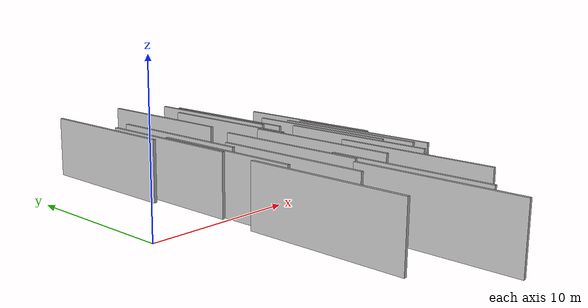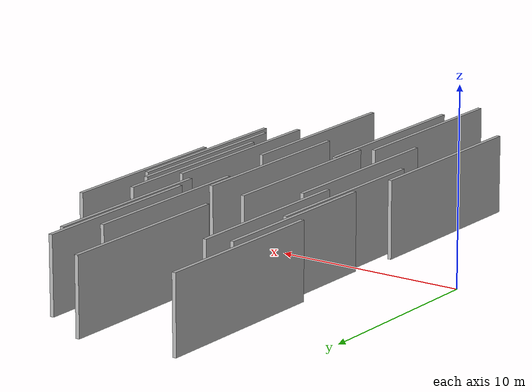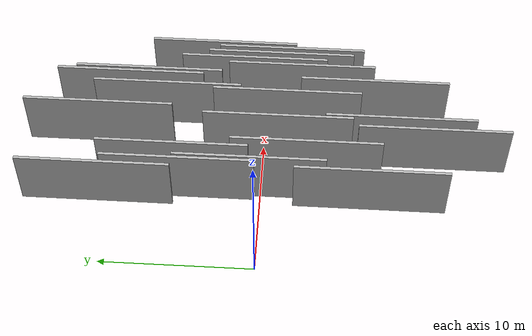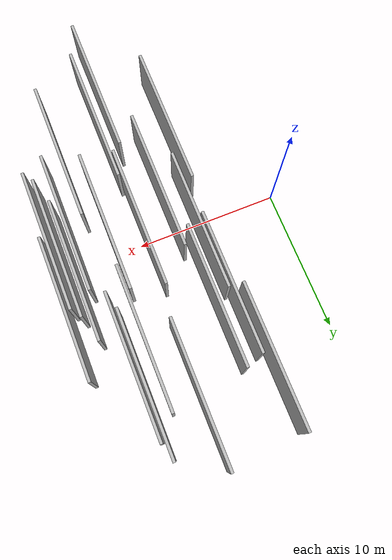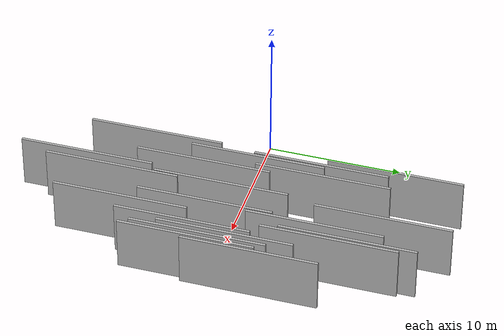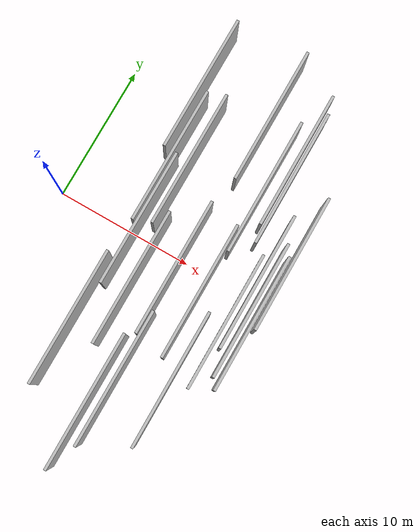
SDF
<sdf version="1.6">
 <world name="default">
  <scene>
   <sky><clouds><speed>12</speed></clouds></sky>
   <ambient>0.4 0.4 0.4 1</ambient>
   <background>0.7 0.7 0.7 1</background>
   <shadows>1</shadows>
  </scene>
  <gravity>0 0 -9.8066</gravity>
  <magnetic_field>6e-06 2.3e-05 -4.2e-05</magnetic_field>
  <physics default="0" name="default_physics" type="ode">
   <ode>
    <solver>
     <type>quick</type>
     <iters>10</iters>
     <sor>1.0</sor>
     <use_dynamic_moi_rescaling>0</use_dynamic_moi_rescaling>
    </solver>
    <constraints>
     <cfm>0</cfm>
     <erp>0.2</erp>
     <contact_max_correcting_vel>100</contact_max_correcting_vel>
     <contact_surface_layer>0.001</contact_surface_layer>
    </constraints>
   </ode>
   <max_step_size>0.004</max_step_size>
   <real_time_factor>1</real_time_factor>
   <real_time_update_rate>250</real_time_update_rate>
  </physics>
  <light name="sun" type="directional">
   <pose>0 0 10 0 0 0</pose>
   <diffuse>0.8 0.8 0.8 1</diffuse>
   <specular>0.2 0.2 0.2 1</specular>
   <attenuation>
    <range>1000</range>
    <constant>0.9</constant>
    <linear>0.01</linear>
    <quadratic>0.001</quadratic>
   </attenuation>
   <direction>-0.5 0.1 -0.9</direction>
  </light>
  <model name="grey_wall_1">
   <static>1</static>
   <pose>13.4154 8.0576 0.0 0.000000 0.000000 1.570796</pose>
   <link name="link">
    <pose>0 0 2.00 0 0 0</pose>
    <collision name="collision"><geometry><box><size>10.00 0.2 4.00</size></box></geometry></collision>
    <visual name="visual">
     <cast_shadows>0</cast_shadows>
     <geometry><box><size>10.00 0.2 4.00</size></box></geometry>
     <material>
      <script>
       <uri>model://HANNAS_wall/materials/scripts</uri>
       <uri>model://HANNAS_wall/materials/textures</uri>
       <name>vrc/HANNAS_wall</name>
      </script>
     </material>
    </visual>
   </link>
  </model>
  <model name="grey_wall_2">
   <static>1</static>
   <pose>13.0893 9.3029 0.0 0.000000 0.000000 1.570796</pose>
   <link name="link">
    <pose>0 0 2.00 0 0 0</pose>
    <collision name="collision"><geometry><box><size>10.00 0.2 4.00</size></box></geometry></collision>
    <visual name="visual">
     <cast_shadows>0</cast_shadows>
     <geometry><box><size>10.00 0.2 4.00</size></box></geometry>
     <material>
      <script>
       <uri>model://HANNAS_wall/materials/scripts</uri>
       <uri>model://HANNAS_wall/materials/textures</uri>
       <name>vrc/HANNAS_wall</name>
      </script>
     </material>
    </visual>
   </link>
  </model>
  <model name="grey_wall_3">
   <static>1</static>
   <pose>5.2799 -7.1702 0.0 0.000000 0.000000 1.570796</pose>
   <link name="link">
    <pose>0 0 2.00 0 0 0</pose>
    <collision name="collision"><geometry><box><size>10.00 0.2 4.00</size></box></geometry></collision>
    <visual name="visual">
     <cast_shadows>0</cast_shadows>
     <geometry><box><size>10.00 0.2 4.00</size></box></geometry>
     <material>
      <script>
       <uri>model://HANNAS_wall/materials/scripts</uri>
       <uri>model://HANNAS_wall/materials/textures</uri>
       <name>vrc/HANNAS_wall</name>
      </script>
     </material>
    </visual>
   </link>
  </model>
  <model name="grey_wall_4">
   <static>1</static>
   <pose>15.3475 -0.9130 0.0 0.000000 0.000000 1.570796</pose>
   <link name="link">
    <pose>0 0 2.00 0 0 0</pose>
    <collision name="collision"><geometry><box><size>10.00 0.2 4.00</size></box></geometry></collision>
    <visual name="visual">
     <cast_shadows>0</cast_shadows>
     <geometry><box><size>10.00 0.2 4.00</size></box></geometry>
     <material>
      <script>
       <uri>model://HANNAS_wall/materials/scripts</uri>
       <uri>model://HANNAS_wall/materials/textures</uri>
       <name>vrc/HANNAS_wall</name>
      </script>
     </material>
    </visual>
   </link>
  </model>
  <model name="grey_wall_5">
   <static>1</static>
   <pose>5.6187 5.3972 0.0 0.000000 0.000000 1.570796</pose>
   <link name="link">
    <pose>0 0 2.00 0 0 0</pose>
    <collision name="collision"><geometry><box><size>10.00 0.2 4.00</size></box></geometry></collision>
    <visual name="visual">
     <cast_shadows>0</cast_shadows>
     <geometry><box><size>10.00 0.2 4.00</size></box></geometry>
     <material>
      <script>
       <uri>model://HANNAS_wall/materials/scripts</uri>
       <uri>model://HANNAS_wall/materials/textures</uri>
       <name>vrc/HANNAS_wall</name>
      </script>
     </material>
    </visual>
   </link>
  </model>
  <model name="grey_wall_6">
   <static>1</static>
   <pose>14.8016 0.9131 0.0 0.000000 0.000000 1.570796</pose>
   <link name="link">
    <pose>0 0 2.00 0 0 0</pose>
    <collision name="collision"><geometry><box><size>10.00 0.2 4.00</size></box></geometry></collision>
    <visual name="visual">
     <cast_shadows>0</cast_shadows>
     <geometry><box><size>10.00 0.2 4.00</size></box></geometry>
     <material>
      <script>
       <uri>model://HANNAS_wall/materials/scripts</uri>
       <uri>model://HANNAS_wall/materials/textures</uri>
       <name>vrc/HANNAS_wall</name>
      </script>
     </material>
    </visual>
   </link>
  </model>
  <model name="grey_wall_7">
   <static>1</static>
   <pose>5.9342 0.7307 0.0 0.000000 0.000000 1.570796</pose>
   <link name="link">
    <pose>0 0 2.00 0 0 0</pose>
    <collision name="collision"><geometry><box><size>10.00 0.2 4.00</size></box></geometry></collision>
    <visual name="visual">
     <cast_shadows>0</cast_shadows>
     <geometry><box><size>10.00 0.2 4.00</size></box></geometry>
     <material>
      <script>
       <uri>model://HANNAS_wall/materials/scripts</uri>
       <uri>model://HANNAS_wall/materials/textures</uri>
       <name>vrc/HANNAS_wall</name>
      </script>
     </material>
    </visual>
   </link>
  </model>
  <model name="grey_wall_8">
   <static>1</static>
   <pose>9.5977 -0.9479 0.0 0.000000 0.000000 1.570796</pose>
   <link name="link">
    <pose>0 0 2.00 0 0 0</pose>
    <collision name="collision"><geometry><box><size>10.00 0.2 4.00</size></box></geometry></collision>
    <visual name="visual">
     <cast_shadows>0</cast_shadows>
     <geometry><box><size>10.00 0.2 4.00</size></box></geometry>
     <material>
      <script>
       <uri>model://HANNAS_wall/materials/scripts</uri>
       <uri>model://HANNAS_wall/materials/textures</uri>
       <name>vrc/HANNAS_wall</name>
      </script>
     </material>
    </visual>
   </link>
  </model>
  <model name="grey_wall_9">
   <static>1</static>
   <pose>16.1954 3.0802 0.0 0.000000 0.000000 1.570796</pose>
   <link name="link">
    <pose>0 0 2.00 0 0 0</pose>
    <collision name="collision"><geometry><box><size>10.00 0.2 4.00</size></box></geometry></collision>
    <visual name="visual">
     <cast_shadows>0</cast_shadows>
     <geometry><box><size>10.00 0.2 4.00</size></box></geometry>
     <material>
      <script>
       <uri>model://HANNAS_wall/materials/scripts</uri>
       <uri>model://HANNAS_wall/materials/textures</uri>
       <name>vrc/HANNAS_wall</name>
      </script>
     </material>
    </visual>
   </link>
  </model>
  <model name="grey_wall_10">
   <static>1</static>
   <pose>14.2894 -2.3630 0.0 0.000000 0.000000 1.570796</pose>
   <link name="link">
    <pose>0 0 2.00 0 0 0</pose>
    <collision name="collision"><geometry><box><size>10.00 0.2 4.00</size></box></geometry></collision>
    <visual name="visual">
     <cast_shadows>0</cast_shadows>
     <geometry><box><size>10.00 0.2 4.00</size></box></geometry>
     <material>
      <script>
       <uri>model://HANNAS_wall/materials/scripts</uri>
       <uri>model://HANNAS_wall/materials/textures</uri>
       <name>vrc/HANNAS_wall</name>
      </script>
     </material>
    </visual>
   </link>
  </model>
  <model name="grey_wall_11">
   <static>1</static>
   <pose>7.4995 -2.9087 0.0 0.000000 0.000000 1.570796</pose>
   <link name="link">
    <pose>0 0 2.00 0 0 0</pose>
    <collision name="collision"><geometry><box><size>10.00 0.2 4.00</size></box></geometry></collision>
    <visual name="visual">
     <cast_shadows>0</cast_shadows>
     <geometry><box><size>10.00 0.2 4.00</size></box></geometry>
     <material>
      <script>
       <uri>model://HANNAS_wall/materials/scripts</uri>
       <uri>model://HANNAS_wall/materials/textures</uri>
       <name>vrc/HANNAS_wall</name>
      </script>
     </material>
    </visual>
   </link>
  </model>
  <model name="grey_wall_12">
   <static>1</static>
   <pose>13.0656 -7.3665 0.0 0.000000 0.000000 1.570796</pose>
   <link name="link">
    <pose>0 0 2.00 0 0 0</pose>
    <collision name="collision"><geometry><box><size>10.00 0.2 4.00</size></box></geometry></collision>
    <visual name="visual">
     <cast_shadows>0</cast_shadows>
     <geometry><box><size>10.00 0.2 4.00</size></box></geometry>
     <material>
      <script>
       <uri>model://HANNAS_wall/materials/scripts</uri>
       <uri>model://HANNAS_wall/materials/textures</uri>
       <name>vrc/HANNAS_wall</name>
      </script>
     </material>
    </visual>
   </link>
  </model>
  <model name="grey_wall_13">
   <static>1</static>
   <pose>9.8598 -9.1015 0.0 0.000000 0.000000 1.570796</pose>
   <link name="link">
    <pose>0 0 2.00 0 0 0</pose>
    <collision name="collision"><geometry><box><size>10.00 0.2 4.00</size></box></geometry></collision>
    <visual name="visual">
     <cast_shadows>0</cast_shadows>
     <geometry><box><size>10.00 0.2 4.00</size></box></geometry>
     <material>
      <script>
       <uri>model://HANNAS_wall/materials/scripts</uri>
       <uri>model://HANNAS_wall/materials/textures</uri>
       <name>vrc/HANNAS_wall</name>
      </script>
     </material>
    </visual>
   </link>
  </model>
  <model name="grey_wall_14">
   <static>1</static>
   <pose>4.9589 10.7327 0.0 0.000000 0.000000 1.570796</pose>
   <link name="link">
    <pose>0 0 2.00 0 0 0</pose>
    <collision name="collision"><geometry><box><size>10.00 0.2 4.00</size></box></geometry></collision>
    <visual name="visual">
     <cast_shadows>0</cast_shadows>
     <geometry><box><size>10.00 0.2 4.00</size></box></geometry>
     <material>
      <script>
       <uri>model://HANNAS_wall/materials/scripts</uri>
       <uri>model://HANNAS_wall/materials/textures</uri>
       <name>vrc/HANNAS_wall</name>
      </script>
     </material>
    </visual>
   </link>
  </model>
  <model name="grey_wall_15">
   <static>1</static>
   <pose>11.8332 -1.4723 0.0 0.000000 0.000000 1.570796</pose>
   <link name="link">
    <pose>0 0 2.00 0 0 0</pose>
    <collision name="collision"><geometry><box><size>10.00 0.2 4.00</size></box></geometry></collision>
    <visual name="visual">
     <cast_shadows>0</cast_shadows>
     <geometry><box><size>10.00 0.2 4.00</size></box></geometry>
     <material>
      <script>
       <uri>model://HANNAS_wall/materials/scripts</uri>
       <uri>model://HANNAS_wall/materials/textures</uri>
       <name>vrc/HANNAS_wall</name>
      </script>
     </material>
    </visual>
   </link>
  </model>
  <model name="grey_wall_16">
   <static>1</static>
   <pose>12.1340 6.6764 0.0 0.000000 0.000000 1.570796</pose>
   <link name="link">
    <pose>0 0 2.00 0 0 0</pose>
    <collision name="collision"><geometry><box><size>10.00 0.2 4.00</size></box></geometry></collision>
    <visual name="visual">
     <cast_shadows>0</cast_shadows>
     <geometry><box><size>10.00 0.2 4.00</size></box></geometry>
     <material>
      <script>
       <uri>model://HANNAS_wall/materials/scripts</uri>
       <uri>model://HANNAS_wall/materials/textures</uri>
       <name>vrc/HANNAS_wall</name>
      </script>
     </material>
    </visual>
   </link>
  </model>
  <model name="grey_wall_17">
   <static>1</static>
   <pose>15.8317 -1.6172 0.0 0.000000 0.000000 1.570796</pose>
   <link name="link">
    <pose>0 0 2.00 0 0 0</pose>
    <collision name="collision"><geometry><box><size>10.00 0.2 4.00</size></box></geometry></collision>
    <visual name="visual">
     <cast_shadows>0</cast_shadows>
     <geometry><box><size>10.00 0.2 4.00</size></box></geometry>
     <material>
      <script>
       <uri>model://HANNAS_wall/materials/scripts</uri>
       <uri>model://HANNAS_wall/materials/textures</uri>
       <name>vrc/HANNAS_wall</name>
      </script>
     </material>
    </visual>
   </link>
  </model>
  <model name="grey_wall_18">
   <static>1</static>
   <pose>8.9780 -11.2971 0.0 0.000000 0.000000 1.570796</pose>
   <link name="link">
    <pose>0 0 2.00 0 0 0</pose>
    <collision name="collision"><geometry><box><size>10.00 0.2 4.00</size></box></geometry></collision>
    <visual name="visual">
     <cast_shadows>0</cast_shadows>
     <geometry><box><size>10.00 0.2 4.00</size></box></geometry>
     <material>
      <script>
       <uri>model://HANNAS_wall/materials/scripts</uri>
       <uri>model://HANNAS_wall/materials/textures</uri>
       <name>vrc/HANNAS_wall</name>
      </script>
     </material>
    </visual>
   </link>
  </model>
  <model name="grey_wall_19">
   <static>1</static>
   <pose>10.1460 11.1289 0.0 0.000000 0.000000 1.570796</pose>
   <link name="link">
    <pose>0 0 2.00 0 0 0</pose>
    <collision name="collision"><geometry><box><size>10.00 0.2 4.00</size></box></geometry></collision>
    <visual name="visual">
     <cast_shadows>0</cast_shadows>
     <geometry><box><size>10.00 0.2 4.00</size></box></geometry>
     <material>
      <script>
       <uri>model://HANNAS_wall/materials/scripts</uri>
       <uri>model://HANNAS_wall/materials/textures</uri>
       <name>vrc/HANNAS_wall</name>
      </script>
     </material>
    </visual>
   </link>
  </model>
  <model name="grey_wall_20">
   <static>1</static>
   <pose>6.8549 5.8419 0.0 0.000000 0.000000 1.570796</pose>
   <link name="link">
    <pose>0 0 2.00 0 0 0</pose>
    <collision name="collision"><geometry><box><size>10.00 0.2 4.00</size></box></geometry></collision>
    <visual name="visual">
     <cast_shadows>0</cast_shadows>
     <geometry><box><size>10.00 0.2 4.00</size></box></geometry>
     <material>
      <script>
       <uri>model://HANNAS_wall/materials/scripts</uri>
       <uri>model://HANNAS_wall/materials/textures</uri>
       <name>vrc/HANNAS_wall</name>
      </script>
     </material>
    </visual>
   </link>
  </model>
 </world>
</sdf>
